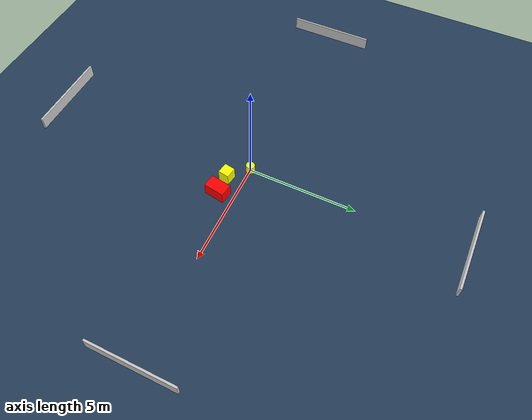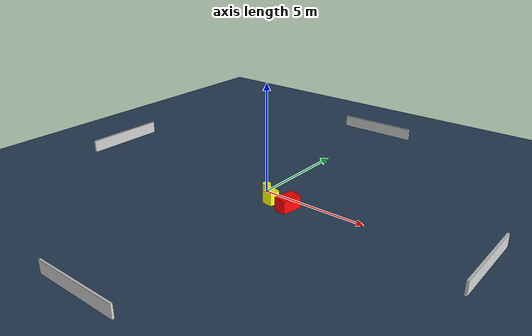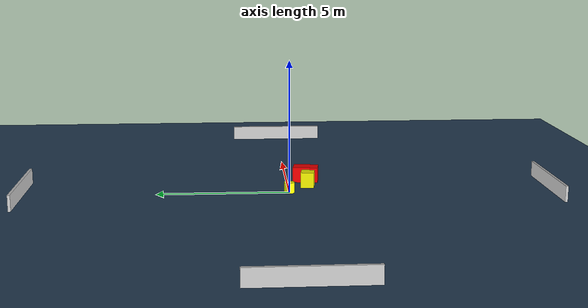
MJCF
<?xml version="1.0" ?>
<mujoco model="generated_environment">
  <option timestep="0.01" integrator="RK4" cone="elliptic"/>
  <default>
    <geom density="1"/>
  </default>
  <asset>
    <texture builtin="gradient" height="3072" name="skybox" rgb1="0.3 0.5 0.7" rgb2="0 0 0" type="skybox" width="512"/>
    <texture builtin="checker" height="300" name="groundplane" rgb1="0.2 0.3 0.4" rgb2="0.1 0.2 0.3" type="2d" width="300"/>
    <material name="groundplane" reflectance="0.2" texrepeat="5 5" texture="groundplane"/>
  </asset>
  <worldbody>
    <light dir="0 0 -1" directional="true" pos="0 0 1.5"/>
    <geom condim="3" friction="0.5 0.005 0.001" material="groundplane" name="floor" pos="0 0 0" size="0 0 0.05" type="plane"/>
    <body name="walls">
      <geom name="wall_1" condim="4" pos="-10.0 0.0 0.3" rgba="0.800000011920929 0.800000011920929 0.800000011920929 1.0" size="0.05 2.0 0.3" type="box"/>
      <geom name="wall_2" condim="4" pos="10.0 0.0 0.3" rgba="0.800000011920929 0.800000011920929 0.800000011920929 1.0" size="0.05 2.0 0.3" type="box"/>
      <geom name="wall_3" condim="4" pos="0.0 -10.0 0.3" rgba="0.800000011920929 0.800000011920929 0.800000011920929 1.0" size="2.0 0.05 0.3" type="box"/>
      <geom name="wall_4" condim="4" pos="0.0 10.0 0.3" rgba="0.800000011920929 0.800000011920929 0.800000011920929 1.0" size="2.0 0.05 0.3" type="box"/>
    </body>
    <body name="robot">
      <joint name="joint_x" type="slide" pos="0 0 0" axis="1 0 0"/>
      <joint name="joint_y" type="slide" pos="0 0 0" axis="0 1 0"/>
      <geom name="robot" type="cylinder" pos="0.0 0.0 0.2" size="0.2 0.2 0.0" mass="5.0" friction="1.0 0.005 0.0001" condim="4" rgba="1.0 1.0 0.0 1.0"/>
    </body>
    <body name="obstacle_1_movable">
      <geom name="obstacle_1_movable" condim="4" pos="0.8459040965438552 -0.7654090211661951 0.3" euler="0 0 170.2903130411209" friction="0.0 0.005 0.001" rgba="1.0 1.0 0.0 1.0" size="0.25785930204156926 0.2536414036971578 0.3" type="box" mass="0.1"/>
      <joint type="free"/>
    </body>
    <body name="obstacle_2_static">
      <geom name="obstacle_2_static" condim="4" pos="1.74501845361782 -0.7603428984247795 0.3" euler="0 0 350.66035020712087" friction="0.0 0.005 0.001" rgba="1.0 0.0 0.0 1.0" size="0.29746470286433796 0.4835177080507267 0.3" type="box"/>
    </body>
  </worldbody>
  <actuator>
    <motor name="actuator_x" joint="joint_x" gear="1" ctrlrange="-1 1"/>
    <motor name="actuator_y" joint="joint_y" gear="1" ctrlrange="-1 1"/>
  </actuator>
</mujoco>
